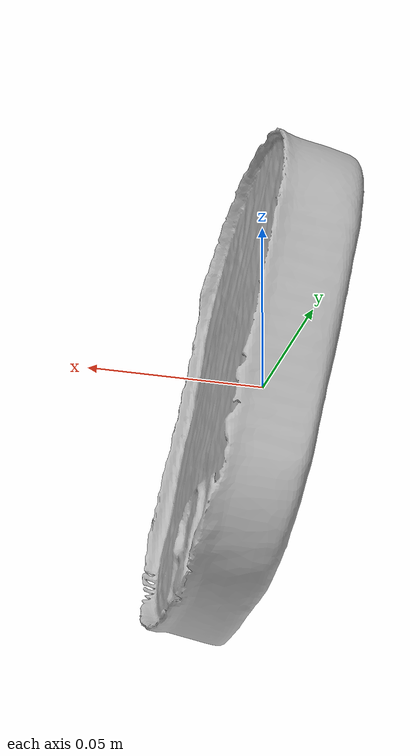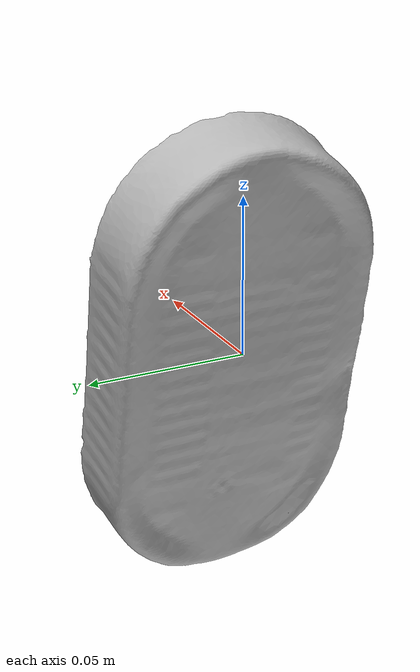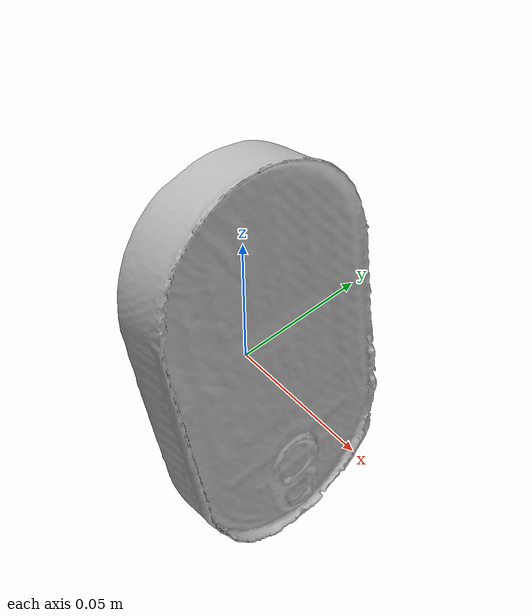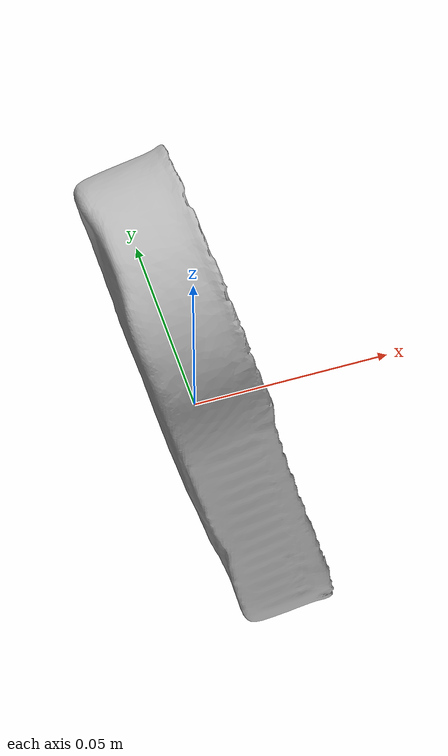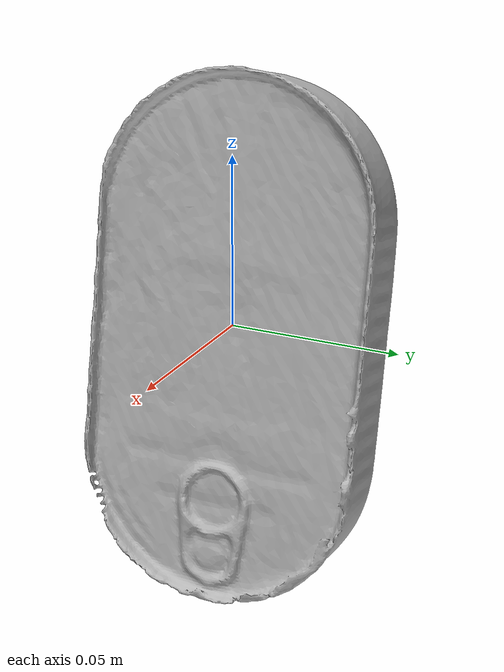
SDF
<?xml version='1.0'?>
<sdf version="1.4">
  <model name="HeringTin">
    <static>false</static>
    <link name="link">
      <inertial>
        <pose>0.004122298699816528 0.003793620290537319 -0.00151394216797074 -3.134823914777097 -0.19409696145986852 0.025603293850294313</pose>
        <mass>0.02767980991305925</mass>
        <inertia>
          <ixx>5.495946519636418e-05</ixx>
          <ixy>6.797767010800118e-22</ixy>
          <ixz>-1.0596361279130766e-20</ixz>
          <iyy>4.288175683560614e-05</iyy>
          <iyz>-2.0546274775678632e-21</iyz>
          <izz>1.5076468506857342e-05</izz>
        </inertia>
      </inertial>
      <collision name="collision">
        <geometry>
          <mesh>
            <!-- Use a downsampled mesh for collisions -->
            <uri>model:///HeringTin/HeringTin_250_collision.obj</uri>
	        </mesh>
        </geometry>
        <surface>
      </surface>
      </collision>
      <visual name="visual">
        <geometry>
          <mesh>
            <uri>model:///HeringTin/HeringTin_25k_tex.obj</uri>
	        </mesh>
        </geometry>
        <material>
          <script>
            <uri>model:///HeringTin/HeringTin.material</uri>
            <name>HeringTin</name>
          </script>
        </material>
      </visual>
    </link>
  </model>
</sdf>
